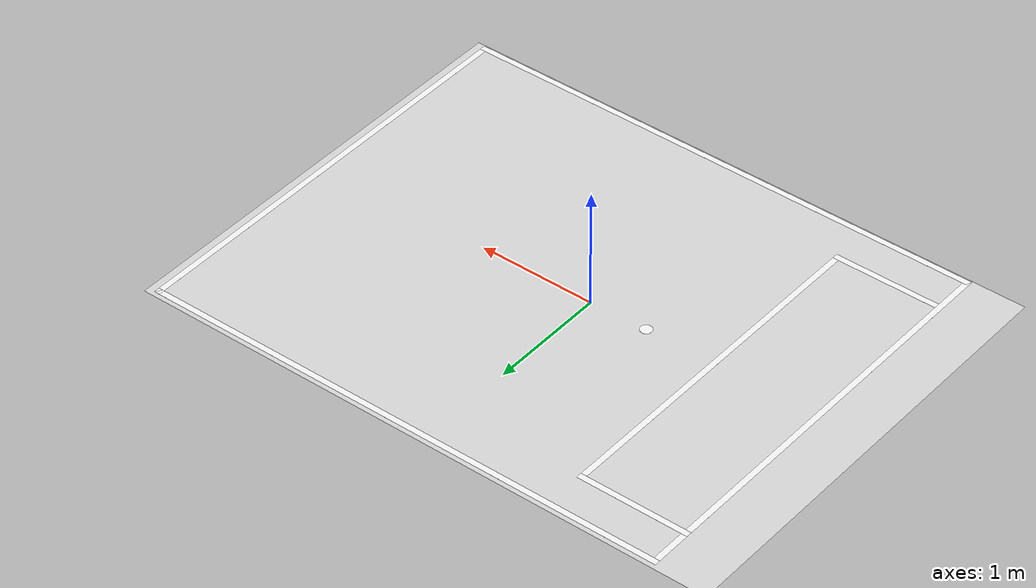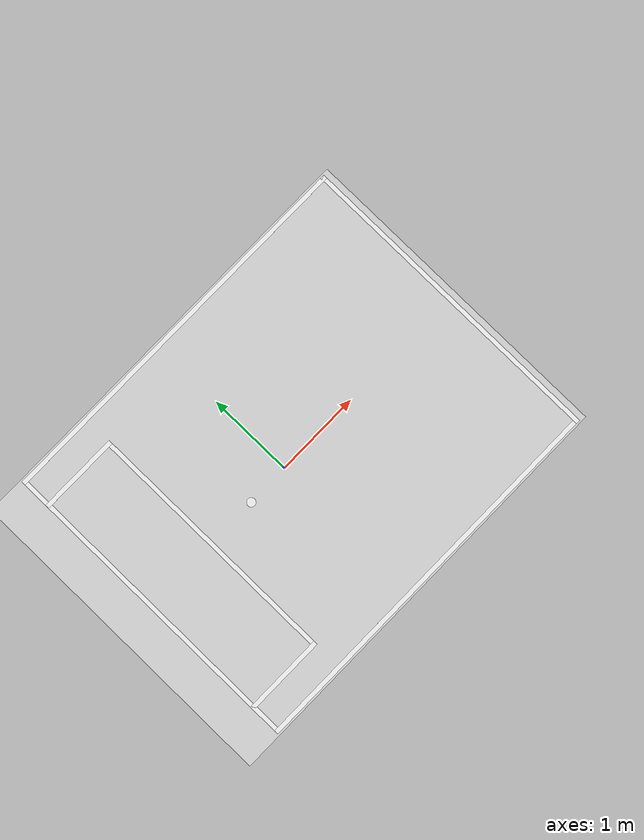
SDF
<?xml version="1.0" ?>
<sdf version="1.5">
  <model name="Robotec Lab Field">
    <static>true</static>
    <link name="field">
      <pose>0 0 0.01 0 0 0</pose>
      <collision name="collision">
        <geometry>
          <plane>
            <normal>0 0 1</normal>
            <size>5.20 3.8</size>
          </plane>
        </geometry>
        <surface>
          <friction>
            <ode>
              <mu>100</mu>
              <mu2>50</mu2>
            </ode>
          </friction>
        </surface>
      </collision>
      <visual name="carpet">
        <cast_shadows>false</cast_shadows>
        <geometry>
          <plane>
            <normal>0 0 1</normal>
            <size>5.20 3.80</size>
          </plane>
        </geometry>
        <material>
          <script>
            <uri>model://robocup09_spl_field/materials/scripts/</uri>
            <uri>model://robocup09_spl_field/materials/textures/</uri>
            <name>RoboCup/Carpet</name>
          </script>
        </material>
      </visual>
      <visual name="sideline_1">
        <pose>0.25 1.85 0.011 0 0 0</pose>
        <cast_shadows>false</cast_shadows>
        <geometry>
          <plane>
            <normal>0 0 1</normal>
            <size>4.55 0.05</size>
          </plane>
        </geometry>
        <material>
          <script>
            <uri>file://media/materials/scripts/gazebo.material</uri>
            <name>Gazebo/White</name>
          </script>
        </material>
      </visual>
      <visual name="sideline_2">
        <pose>0.25 -1.85 0.011 0 0 0</pose>
        <cast_shadows>false</cast_shadows>
        <geometry>
          <plane>
            <normal>0 0 1</normal>
            <size>4.55 0.05</size>
          </plane>
        </geometry>
        <material>
          <script>
            <uri>file://media/materials/scripts/gazebo.material</uri>
            <name>Gazebo/White</name>
          </script>
        </material>
      </visual>
      <visual name="endline_1">
        <pose>-2.0 0 0.011 0 0 0</pose>
        <cast_shadows>false</cast_shadows>
        <geometry>
          <plane>
            <normal>0 0 1</normal>
            <size>0.05 3.75</size>
          </plane>
        </geometry>
        <material>
          <script>
            <uri>file://media/materials/scripts/gazebo.material</uri>
            <name>Gazebo/White</name>
          </script>
        </material>
      </visual>
      <visual name="endline_2">
        <pose>2.5 0 0.011 0 0 0</pose>
        <cast_shadows>false</cast_shadows>
        <geometry>
          <plane>
            <normal>0 0 1</normal>
            <size>0.05 3.75</size>
          </plane>
        </geometry>
        <material>
          <script>
            <uri>file://media/materials/scripts/gazebo.material</uri>
            <name>Gazebo/White</name>
          </script>
        </material>
      </visual>
      <visual name="area_1_line_a">
        <pose>-1.1 0 0.011 0 0 0</pose>
        <cast_shadows>false</cast_shadows>
        <geometry>
          <plane>
            <normal>0 0 1</normal>
            <size>0.05 2.95</size>
          </plane>
        </geometry>
        <material>
          <script>
            <uri>file://media/materials/scripts/gazebo.material</uri>
            <name>Gazebo/White</name>
          </script>
        </material>
      </visual>
      <visual name="area_2_line_a">
        <pose>-1.55 1.5 0.011 0 0 0</pose>
        <cast_shadows>false</cast_shadows>
        <geometry>
          <plane>
            <normal>0 0 1</normal>
            <size>0.95 0.05</size>
          </plane>
        </geometry>
        <material>
          <script>
            <uri>file://media/materials/scripts/gazebo.material</uri>
            <name>Gazebo/White</name>
          </script>
        </material>
      </visual>
      <visual name="area_3_line_a">
        <pose>-1.55 -1.5 0.011 0 0 0</pose>
        <cast_shadows>false</cast_shadows>
        <geometry>
          <plane>
            <normal>0 0 1</normal>
            <size>0.95 0.05</size>
          </plane>
        </geometry>
        <material>
          <script>
            <uri>file://media/materials/scripts/gazebo.material</uri>
            <name>Gazebo/White</name>
          </script>
        </material>
      </visual>
      <visual name="penalty_a">
        <pose>-0.5 0 0.01 0 0 0</pose>
        <cast_shadows>false</cast_shadows>
        <geometry>
          <cylinder>
            <radius>0.05</radius>
            <length>0.0005</length>
          </cylinder>
        </geometry>
        <material>
          <script>
            <uri>file://media/materials/scripts/gazebo.material</uri>
            <name>Gazebo/White</name>
          </script>
        </material>
      </visual>
    </link>
  </model>
</sdf>
